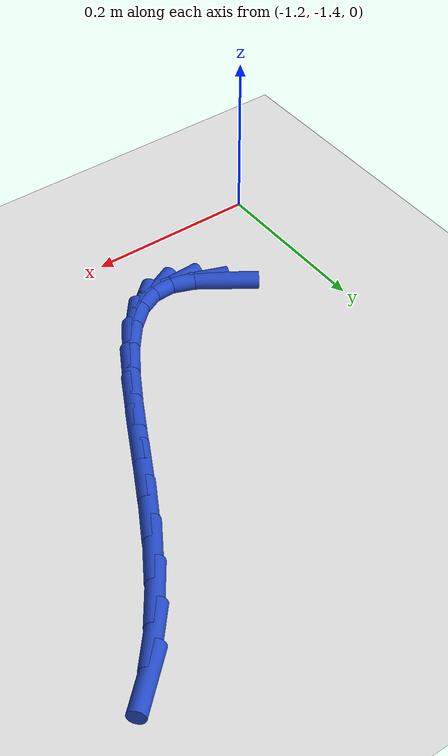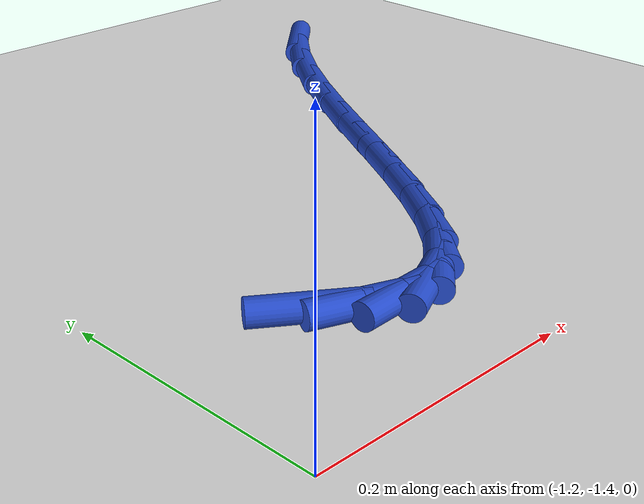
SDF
<sdf version="1.6">
 <world name="default">
  <model name="ground_plane">
   <static>1</static>
   <link name="link">
    <collision name="collision">
     <geometry><plane><normal>0 0 1</normal><size>100 100</size></plane></geometry>
     <surface><friction><ode><mu>100</mu><mu2>50</mu2></ode></friction></surface>
    </collision>
    <visual name="visual">
     <cast_shadows>0</cast_shadows>
     <geometry><plane><normal>0 0 1</normal><size>100 100</size></plane></geometry>
     <material>
      <script><uri>file://media/materials/scripts/gazebo.material</uri><name>Gazebo/WhiteGlow</name></script>
     </material>
    </visual>
   </link>
  </model>
  <model name="line">
   <link name="link_135">
    <pose>-1.0938709818474337 -1.2870239497499887 0.01 0 1.57 -0.6082268007498983</pose>
    <collision name="collision">
     <geometry><cylinder><radius>0.01</radius><length>0.08</length></cylinder></geometry>
    </collision>
    <visual name="visual">
     <material>
      <script><name>Gazebo/Blue</name><uri>file://media/materials/scripts/gazebo.material</uri></script>
     </material>
     <geometry><cylinder><radius>0.01</radius><length>0.08</length></cylinder></geometry>
    </visual>
   </link>
   <link name="link_136">
    <pose>-1.0660612658548116 -1.30638737504068 0.01 0 1.57 -0.3564899322293992</pose>
    <collision name="collision">
     <geometry><cylinder><radius>0.01</radius><length>0.08</length></cylinder></geometry>
    </collision>
    <visual name="visual">
     <material>
      <script><name>Gazebo/Blue</name><uri>file://media/materials/scripts/gazebo.material</uri></script>
     </material>
     <geometry><cylinder><radius>0.01</radius><length>0.08</length></cylinder></geometry>
    </visual>
   </link>
   <link name="link_137">
    <pose>-1.039697019515341 -1.316205440196598 0.01 0 1.57 0.05177253403404898</pose>
    <collision name="collision">
     <geometry><cylinder><radius>0.01</radius><length>0.08</length></cylinder></geometry>
    </collision>
    <visual name="visual">
     <material>
      <script><name>Gazebo/Blue</name><uri>file://media/materials/scripts/gazebo.material</uri></script>
     </material>
     <geometry><cylinder><radius>0.01</radius><length>0.08</length></cylinder></geometry>
    </visual>
   </link>
   <link name="link_138">
    <pose>-1.014645831906322 -1.3149073166981777 0.01 0 1.57 0.44586157536714677</pose>
    <collision name="collision">
     <geometry><cylinder><radius>0.01</radius><length>0.08</length></cylinder></geometry>
    </collision>
    <visual name="visual">
     <material>
      <script><name>Gazebo/Blue</name><uri>file://media/materials/scripts/gazebo.material</uri></script>
     </material>
     <geometry><cylinder><radius>0.01</radius><length>0.08</length></cylinder></geometry>
    </visual>
   </link>
   <link name="link_139">
    <pose>-0.990641465915255 -1.3034341628992614 0.01 0 1.57 0.7183523614605639</pose>
    <collision name="collision">
     <geometry><cylinder><radius>0.01</radius><length>0.08</length></cylinder></geometry>
    </collision>
    <visual name="visual">
     <material>
      <script><name>Gazebo/Blue</name><uri>file://media/materials/scripts/gazebo.material</uri></script>
     </material>
     <geometry><cylinder><radius>0.01</radius><length>0.08</length></cylinder></geometry>
    </visual>
   </link>
   <link name="link_140">
    <pose>-0.9673970277336992 -1.2831148740318956 0.01 0 1.57 0.8851515519122033</pose>
    <collision name="collision">
     <geometry><cylinder><radius>0.01</radius><length>0.08</length></cylinder></geometry>
    </collision>
    <visual name="visual">
     <material>
      <script><name>Gazebo/Blue</name><uri>file://media/materials/scripts/gazebo.material</uri></script>
     </material>
     <geometry><cylinder><radius>0.01</radius><length>0.08</length></cylinder></geometry>
    </visual>
   </link>
   <link name="link_141">
    <pose>-0.9446256235532129 -1.2552783453281275 0.01 0 1.57 0.9847900828310036</pose>
    <collision name="collision">
     <geometry><cylinder><radius>0.01</radius><length>0.08</length></cylinder></geometry>
    </collision>
    <visual name="visual">
     <material>
      <script><name>Gazebo/Blue</name><uri>file://media/materials/scripts/gazebo.material</uri></script>
     </material>
     <geometry><cylinder><radius>0.01</radius><length>0.08</length></cylinder></geometry>
    </visual>
   </link>
   <link name="link_142">
    <pose>-0.9220403595653551 -1.221253472020004 0.01 0 1.57 1.0426547988320063</pose>
    <collision name="collision">
     <geometry><cylinder><radius>0.01</radius><length>0.08</length></cylinder></geometry>
    </collision>
    <visual name="visual">
     <material>
      <script><name>Gazebo/Blue</name><uri>file://media/materials/scripts/gazebo.material</uri></script>
     </material>
     <geometry><cylinder><radius>0.01</radius><length>0.08</length></cylinder></geometry>
    </visual>
   </link>
   <link name="link_143">
    <pose>-0.8993543419616853 -1.1823691493395718 0.01 0 1.57 1.072571818351298</pose>
    <collision name="collision">
     <geometry><cylinder><radius>0.01</radius><length>0.08</length></cylinder></geometry>
    </collision>
    <visual name="visual">
     <material>
      <script><name>Gazebo/Blue</name><uri>file://media/materials/scripts/gazebo.material</uri></script>
     </material>
     <geometry><cylinder><radius>0.01</radius><length>0.08</length></cylinder></geometry>
    </visual>
   </link>
   <link name="link_144">
    <pose>-0.876280676933762 -1.1399542725188783 0.01 0 1.57 1.0816643775864334</pose>
    <collision name="collision">
     <geometry><cylinder><radius>0.01</radius><length>0.08</length></cylinder></geometry>
    </collision>
    <visual name="visual">
     <material>
      <script><name>Gazebo/Blue</name><uri>file://media/materials/scripts/gazebo.material</uri></script>
     </material>
     <geometry><cylinder><radius>0.01</radius><length>0.08</length></cylinder></geometry>
    </visual>
   </link>
   <link name="link_145">
    <pose>-0.8525324706731441 -1.0953377367899693 0.01 0 1.57 1.0731913119517629</pose>
    <collision name="collision">
     <geometry><cylinder><radius>0.01</radius><length>0.08</length></cylinder></geometry>
    </collision>
    <visual name="visual">
     <material>
      <script><name>Gazebo/Blue</name><uri>file://media/materials/scripts/gazebo.material</uri></script>
     </material>
     <geometry><cylinder><radius>0.01</radius><length>0.08</length></cylinder></geometry>
    </visual>
   </link>
   <link name="link_146">
    <pose>-0.8278228293713905 -1.049848437384893 0.01 0 1.57 1.0478963418633198</pose>
    <collision name="collision">
     <geometry><cylinder><radius>0.01</radius><length>0.08</length></cylinder></geometry>
    </collision>
    <visual name="visual">
     <material>
      <script><name>Gazebo/Blue</name><uri>file://media/materials/scripts/gazebo.material</uri></script>
     </material>
     <geometry><cylinder><radius>0.01</radius><length>0.08</length></cylinder></geometry>
    </visual>
   </link>
   <link name="link_147">
    <pose>-0.8018648592200595 -1.0048152695356947 0.01 0 1.57 1.0045338481980246</pose>
    <collision name="collision">
     <geometry><cylinder><radius>0.01</radius><length>0.08</length></cylinder></geometry>
    </collision>
    <visual name="visual">
     <material>
      <script><name>Gazebo/Blue</name><uri>file://media/materials/scripts/gazebo.material</uri></script>
     </material>
     <geometry><cylinder><radius>0.01</radius><length>0.08</length></cylinder></geometry>
    </visual>
   </link>
   <link name="link_148">
    <pose>-0.7743716664107103 -0.9615671284744212 0.01 0 1.57 0.9399369486222271</pose>
    <collision name="collision">
     <geometry><cylinder><radius>0.01</radius><length>0.08</length></cylinder></geometry>
    </collision>
    <visual name="visual">
     <material>
      <script><name>Gazebo/Blue</name><uri>file://media/materials/scripts/gazebo.material</uri></script>
     </material>
     <geometry><cylinder><radius>0.01</radius><length>0.08</length></cylinder></geometry>
    </visual>
   </link>
   <link name="link_149">
    <pose>-0.7450563571349023 -0.921432909433121 0.01 0 1.57 0.8489467747873903</pose>
    <collision name="collision">
     <geometry><cylinder><radius>0.01</radius><length>0.08</length></cylinder></geometry>
    </collision>
    <visual name="visual">
     <material>
      <script><name>Gazebo/Blue</name><uri>file://media/materials/scripts/gazebo.material</uri></script>
     </material>
     <geometry><cylinder><radius>0.01</radius><length>0.08</length></cylinder></geometry>
    </visual>
   </link>
   <link name="link_150">
    <pose>-0.7136329928341922 -0.8857385564966411 0.01 0 1.57 0.7368903146429001</pose>
    <collision name="collision">
     <geometry><cylinder><radius>0.01</radius><length>0.08</length></cylinder></geometry>
    </collision>
    <visual name="visual">
     <material>
      <script><name>Gazebo/Blue</name><uri>file://media/materials/scripts/gazebo.material</uri></script>
     </material>
     <geometry><cylinder><radius>0.01</radius><length>0.08</length></cylinder></geometry>
    </visual>
   </link>
  </model>
 </world>
</sdf>
